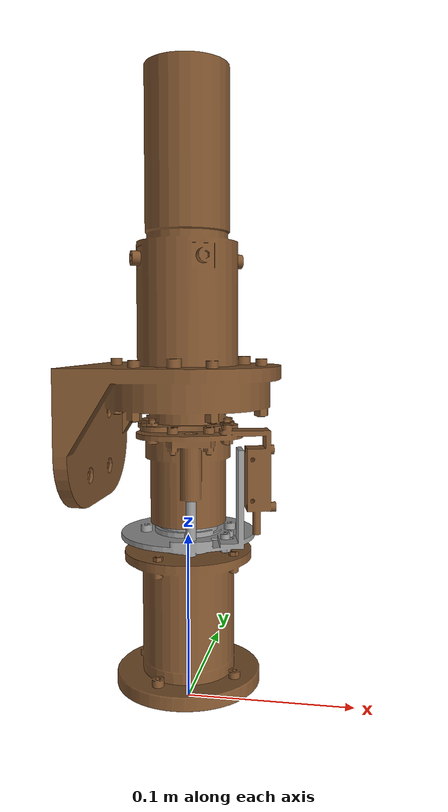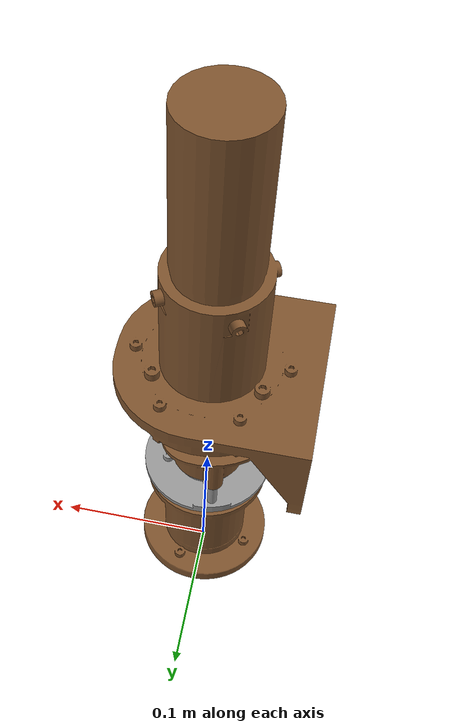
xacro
<?xml version="1.0"?>
<robot name="force_effector"
  xmlns:xacro="http://www.ros.org/wiki/xacro">
  <!-- Import Rviz colors -->
  <xacro:include filename="$(find force_effector_description)/urdf/materials.xacro" />
  <!--Import the force_effector macro -->
  <xacro:include filename="$(find force_effector_description)/urdf/force_effector.xacro"/>

  <xacro:property name="PI" value="3.1415926535897931"/>

  <xacro:arg name="robot_name" default="force_effector"/>
  <xacro:arg name="origin_xyz" default="0 0 0.155"/>
  <xacro:arg name="origin_rpy" default="${PI} 0 0"/>

  <!-- Fix to world just for testing -->
  <link name="world"/>

  <!--iiwa-->
  <xacro:force_effector robot_name="$(arg robot_name)" parent="world">
    <origin xyz="$(arg origin_xyz)" rpy="$(arg origin_rpy)" />
  </xacro:force_effector>

</robot>

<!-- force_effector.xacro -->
<robot xmlns:xacro="http://www.ros.org/wiki/xacro">
    <xacro:include filename="$(find force_effector_description)/urdf/force_effector.gazebo.xacro"/>
    <xacro:include filename="$(find force_effector_description)/urdf/force_effector.transmission.xacro"/>

    <xacro:macro name="force_effector" params="parent robot_name *origin">
        <joint name="${parent}_${robot_name}_joint" type="fixed">
            <xacro:insert_block name="origin"/>
            <parent link="${parent}" />
            <child link="${robot_name}_link_0" />
        </joint>
        <link name="${robot_name}_link_0">
            <inertial>
                <origin xyz="-0.016368 0.000088 -0.044438" rpy="0 0 0"/>
                <mass value="2.105"/>
                <inertia ixx="0.007661" ixy="0.000034" ixz="-0.001075" iyy="0.008193" iyz="0.000009" izz="0.003594" />
            </inertial>
            <visual>
                <origin xyz="0 0 0" rpy="0 0 0"/>
                <geometry>
                    <mesh filename="package://force_effector_description/meshes/visual/force_effector_link_0.STL"/>
                </geometry>
                <material name="Brown"/>
            </visual>
            <collision>
                <origin xyz="0 0 0" rpy="0 0 0"/>
                <geometry>
                    <mesh filename="package://force_effector_description/meshes/visual/force_effector_link_0.STL"/>
                </geometry>
                <material name="Brown"/>
            </collision>
        </link>

        <joint name="${robot_name}_joint_1" type="prismatic">
            <axis xyz="0 0 1"/>
            <origin xyz="0 0 0" rpy="0 0 0"/>
            <parent link="${robot_name}_link_0"/>
            <child link="${robot_name}_link_1"/>
            <limit lower="0" upper="0.01" effort="50" velocity="1" />
        </joint>
        <link name="${robot_name}_link_1">
            <inertial>
                <origin xyz="0.000633 0.000526 0.051434" rpy="0 0 0"/>
                <mass value="0.124"/>
                <inertia ixx="0.000091" ixy="0.000008" ixz="-0.000002" iyy="0.000071" iyz="-0.000001" izz="0.000077" />
            </inertial>
            <visual>
                <origin xyz="0 0 0" rpy="0 0 0"/>
                <geometry>
                    <mesh filename="package://force_effector_description/meshes/visual/force_effector_link_1.STL"/>
                </geometry>
                <material name="Grey"/>
            </visual>
            <collision>
                <origin xyz="0 0 0" rpy="0 0 0"/>
                <geometry>
                    <mesh filename="package://force_effector_description/meshes/visual/force_effector_link_1.STL"/>
                </geometry>
                <material name="Grey"/>
            </collision>
        </link>
        <joint name="${robot_name}_joint_2" type="continuous">
            <axis xyz="0 0 1"/>
            <origin xyz="0 0 0" rpy="0 0 0"/>
            <parent link="${robot_name}_link_1"/>
            <child link="${robot_name}_link_2"/>
        </joint>
        <link name="${robot_name}_link_2">
            <inertial>
                <origin xyz="-0.000124 -0.000104 0.105" rpy="0 0 0"/>
                <mass value="2.105"/>
                <inertia ixx="0.000354" ixy="0.000000" ixz="0.000001" iyy="0.000354" iyz="0.000000" izz="0.000209" />
            </inertial>
            <visual>
                <origin xyz="0 0 0" rpy="0 0 0"/>
                <geometry>
                    <mesh filename="package://force_effector_description/meshes/visual/force_effector_link_2.STL"/>
                </geometry>
                <material name="Brown"/>
            </visual>
            <collision>
                <origin xyz="0 0 0" rpy="0 0 0"/>
                <geometry>
                    <mesh filename="package://force_effector_description/meshes/visual/force_effector_link_2.STL"/>
                </geometry>
                <material name="Brown"/>
            </collision>
        </link>
        <joint name="${robot_name}_tip_joint" type="fixed">
            <origin xyz="0 0 0.1492" rpy="0 0 0"/>
            <parent link="${robot_name}_link_2"/>
            <child link="${robot_name}_link_ee"/>
        </joint>
        <link name="${robot_name}_link_ee"/>

        <xacro:force_effector_gazebo robot_name="${robot_name}" />
        <xacro:force_effector_transmission robot_name="${robot_name}"/>
    </xacro:macro>

</robot>
